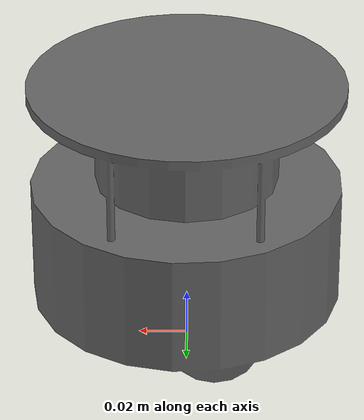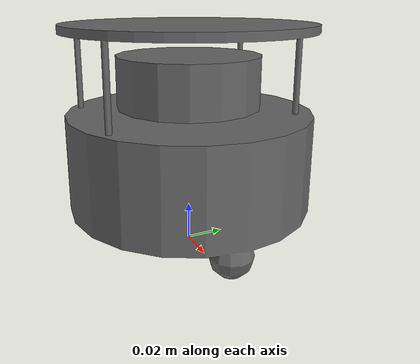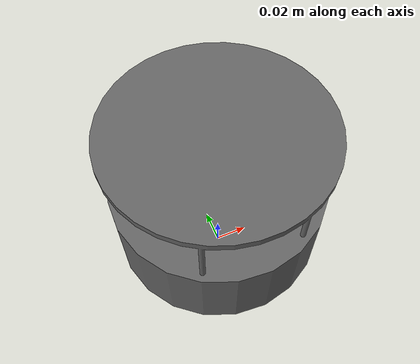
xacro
<?xml version="1.0" ?>
<robot name="hawkbot" xmlns:xacro="http://ros.org/wiki/xacro">
    <xacro:include filename="$(find hawkbot)/model/common_properties.xacro"/>
    <xacro:include filename="$(find hawkbot)/model/hawkbot.gazebo.xacro"/>

    <link name="base_footprint">
        <visual>
            <origin xyz="0 0 0.0" rpy="0 0 0"/>
            <geometry>
                <mesh filename="package://hawkbot/HB-01S.stl" scale="1 1 1"/>
            </geometry>
               <material name="black">
      	         <color rgba="0.4 0.4 0.4 1.0" />
               </material>
        </visual>
    </link>

</robot>
